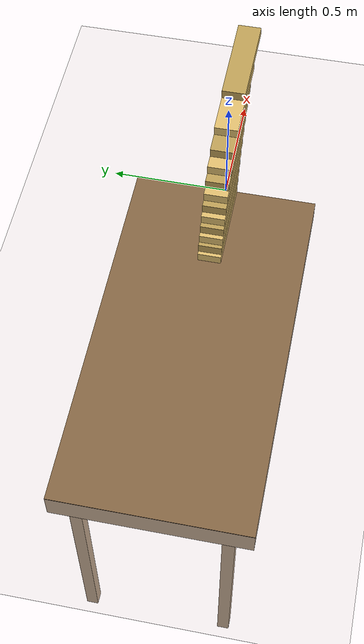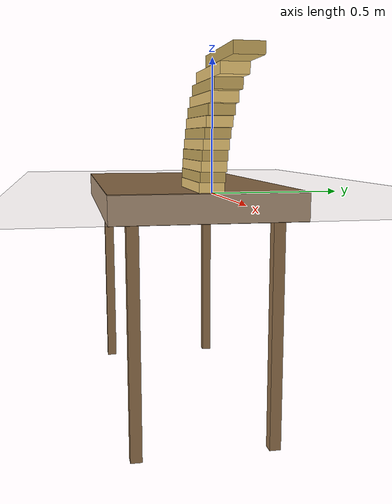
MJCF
<mujoco model="block_overhang">
  <compiler angle="radian" coordinate="local" autolimits="true"/>
  <option timestep="0.002" gravity="0 0 -9.81" integrator="implicitfast"
          impratio="3" cone="elliptic"/>

  <visual>
    <headlight diffuse="0 0 0" ambient="0.50 0.48 0.55" specular="0 0 0"/>
    <rgba haze="0.94 0.91 0.90 1"/>
    <global azimuth="120" elevation="-15" offwidth="1920" offheight="1080" fovy="34"/>
    <quality shadowsize="8192" offsamples="8"/>
    <map shadowclip="6" shadowscale="0.7"/>
  </visual>

  <asset>
    <texture type="skybox" builtin="flat"
             rgb1="0.74 0.68 0.86" rgb2="0.74 0.68 0.86"
             width="512" height="512" mark="none" markrgb="0 0 0"/>
    <material name="floor_mat"  rgba="0.94 0.91 0.90 1" specular="0" shininess="0"/>
    <material name="table_wood" rgba="0.55 0.42 0.28 1" specular="0.15" shininess="0.2"/>
    <material name="brick_warm" rgba="0.92 0.78 0.46 1" specular="0.1" shininess="0.12"/>
    <material name="brick_cool" rgba="0.78 0.66 0.36 1" specular="0.1" shininess="0.12"/>
  </asset>

  <default>
    <!-- High friction so bricks don't slip; stiff contacts so the stack
         doesn't sag visibly under its own weight. -->
    <geom friction="0.8 0.04 0.005" solref="0.003 1" solimp="0.97 0.99 0.001"/>
  </default>

  <worldbody>
    <light pos="0 0 12" dir="-0.30 0.55 -1" directional="true" castshadow="true"
           diffuse="0.85 0.82 0.78" specular="0.15 0.15 0.15"/>
    <light pos="0 0 8" dir="0.40 -0.30 -1" directional="true" castshadow="false"
           diffuse="0.28 0.28 0.34" specular="0 0 0"/>

    <geom name="floor" type="plane" size="40 40 0.1" material="floor_mat"/>

    <!-- Table.  Top face at z=0; right edge at x=0; brick 0 sits with its
         right edge aligned to the table edge. -->
    <geom name="table" type="box" pos="-0.80 0 -0.06"
          size="0.80 0.40 0.06" material="table_wood"/>
    <!-- Table legs for visual context. -->
    <geom type="box" size="0.025 0.025 0.50"
          pos="-1.55 -0.30 -0.62" material="table_wood"/>
    <geom type="box" size="0.025 0.025 0.50"
          pos="-1.55  0.30 -0.62" material="table_wood"/>
    <geom type="box" size="0.025 0.025 0.50"
          pos="-0.10 -0.30 -0.62" material="table_wood"/>
    <geom type="box" size="0.025 0.025 0.50"
          pos="-0.10  0.30 -0.62" material="table_wood"/>

    <!-- 12 bricks stacked with overhang = SAFETY * theoretical max. -->
    <body name="brick0" pos="-0.20000 0 0.02000">
      <freejoint/>
      <geom type="box" size="0.2 0.05 0.02" mass="0.06"
            material="brick_warm"/>
    </body>
    <body name="brick1" pos="-0.18455 0 0.06100">
      <freejoint/>
      <geom type="box" size="0.2 0.05 0.02" mass="0.06"
            material="brick_cool"/>
    </body>
    <body name="brick2" pos="-0.16755 0 0.10200">
      <freejoint/>
      <geom type="box" size="0.2 0.05 0.02" mass="0.06"
            material="brick_warm"/>
    </body>
    <body name="brick3" pos="-0.14866 0 0.14300">
      <freejoint/>
      <geom type="box" size="0.2 0.05 0.02" mass="0.06"
            material="brick_cool"/>
    </body>
    <body name="brick4" pos="-0.12741 0 0.18400">
      <freejoint/>
      <geom type="box" size="0.2 0.05 0.02" mass="0.06"
            material="brick_warm"/>
    </body>
    <body name="brick5" pos="-0.10312 0 0.22500">
      <freejoint/>
      <geom type="box" size="0.2 0.05 0.02" mass="0.06"
            material="brick_cool"/>
    </body>
    <body name="brick6" pos="-0.07479 0 0.26600">
      <freejoint/>
      <geom type="box" size="0.2 0.05 0.02" mass="0.06"
            material="brick_warm"/>
    </body>
    <body name="brick7" pos="-0.04079 0 0.30700">
      <freejoint/>
      <geom type="box" size="0.2 0.05 0.02" mass="0.06"
            material="brick_cool"/>
    </body>
    <body name="brick8" pos="0.00171 0 0.34800">
      <freejoint/>
      <geom type="box" size="0.2 0.05 0.02" mass="0.06"
            material="brick_warm"/>
    </body>
    <body name="brick9" pos="0.05838 0 0.38900">
      <freejoint/>
      <geom type="box" size="0.2 0.05 0.02" mass="0.06"
            material="brick_cool"/>
    </body>
    <body name="brick10" pos="0.14338 0 0.43000">
      <freejoint/>
      <geom type="box" size="0.2 0.05 0.02" mass="0.06"
            material="brick_warm"/>
    </body>
    <body name="brick11" pos="0.31338 0 0.47100">
      <freejoint/>
      <geom type="box" size="0.2 0.05 0.02" mass="0.06"
            material="brick_cool"/>
    </body>

    <!-- Camera: pure profile from -y direction, horizontal look — the
         cantilever silhouette is the point of the demo. -->
    <camera name="cam" pos="0.18 -2.20 0.26" fovy="36"
            xyaxes="1 0 0   0 0 1"/>
  </worldbody>
</mujoco>
